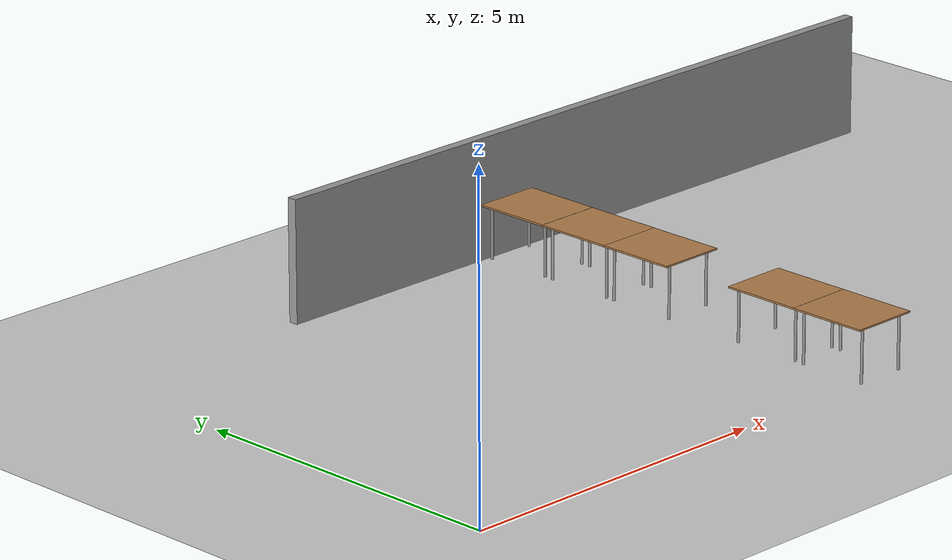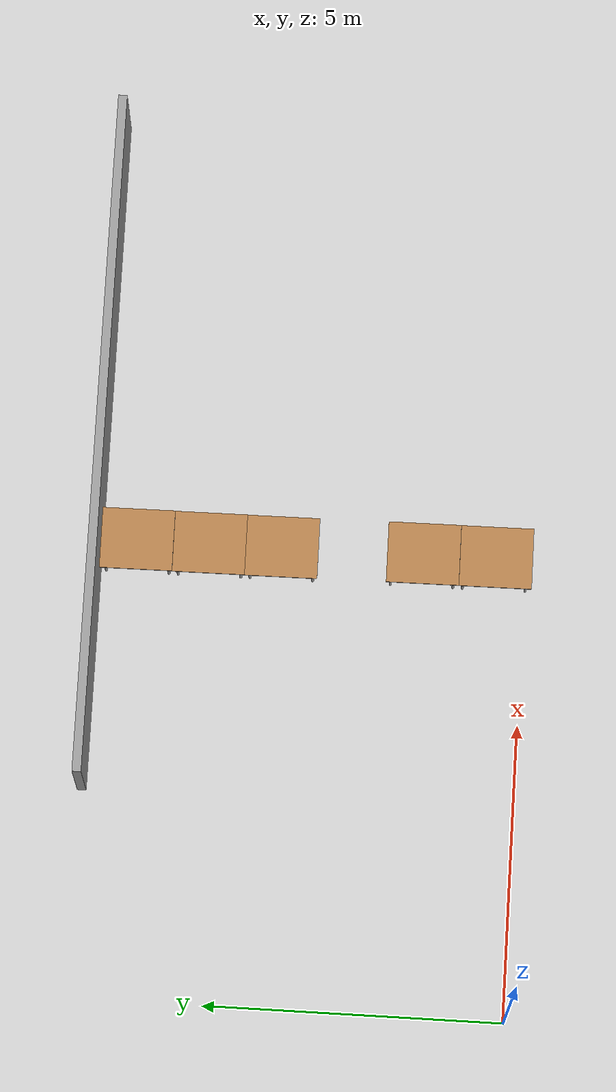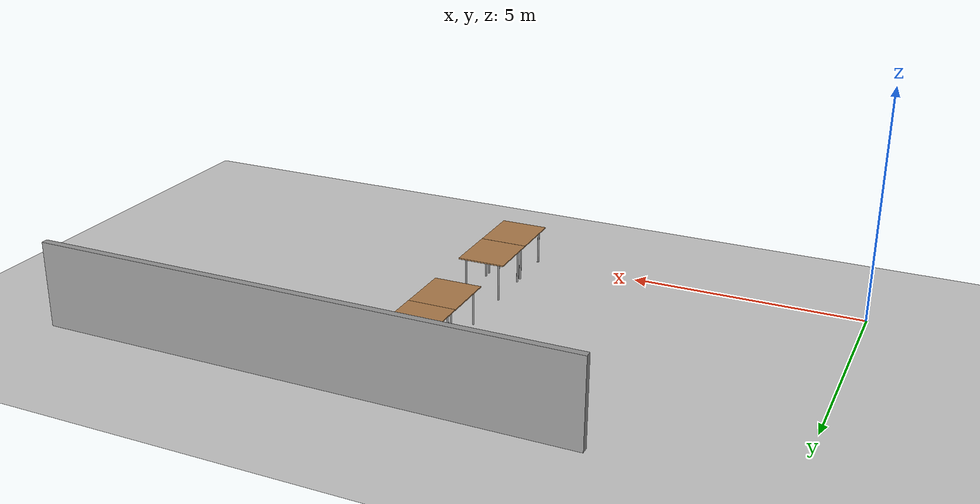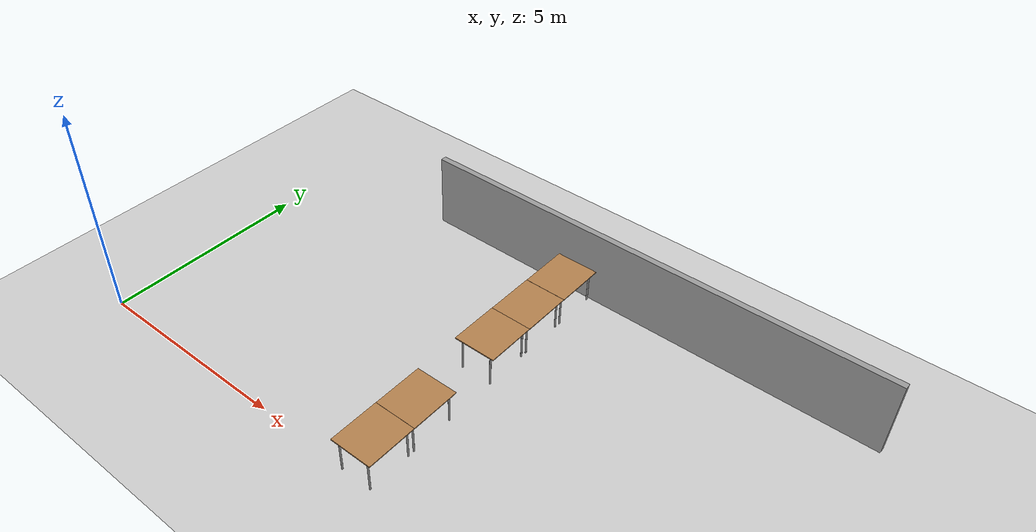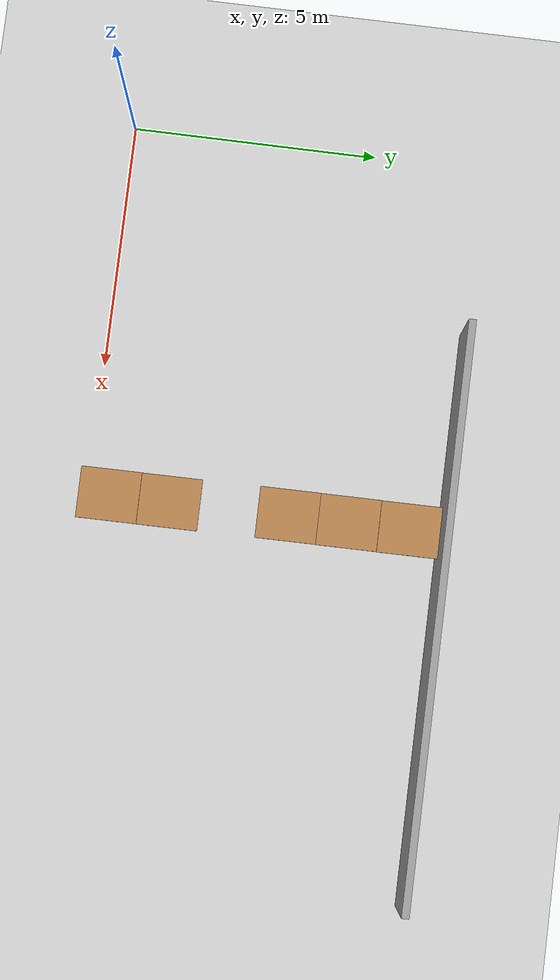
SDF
<sdf version="1.7">
 <world name="default">
  <model name="work_station_clone_clone_clone_clone_clone_clone_clone_clone_clone">
   <link name="link">
    <inertial>
     <inertia><ixx>0</ixx><ixy>0</ixy><ixz>0</ixz><iyy>0</iyy><iyz>0</iyz><izz>0</izz></inertia>
     <mass>0</mass>
    </inertial>
    <visual name="back_right_leg">
     <pose>-0.53 -0.38 0.42 0 -0 0</pose>
     <geometry><cylinder><radius>0.0207459</radius><length>0.822541</length></cylinder></geometry>
     <material>
      <script><uri>file://media/materials/scripts/gazebo.material</uri><name>Gazebo/Grey</name></script>
      <shader type="pixel"><normal_map>__default__</normal_map></shader>
      <ambient>0.3 0.3 0.3 1</ambient>
      <diffuse>0.7 0.7 0.7 1</diffuse>
      <specular>0.01 0.01 0.01 1</specular>
      <emissive>0 0 0 1</emissive>
     </material>
    </visual>
    <visual name="back_left_leg">
     <pose>-0.53 0.38 0.42 0 -0 0</pose>
     <geometry><cylinder><radius>0.0207459</radius><length>0.822541</length></cylinder></geometry>
     <material>
      <script><uri>file://media/materials/scripts/gazebo.material</uri><name>Gazebo/Grey</name></script>
      <shader type="pixel"><normal_map>__default__</normal_map></shader>
      <ambient>0.3 0.3 0.3 1</ambient>
      <diffuse>0.7 0.7 0.7 1</diffuse>
      <specular>0.01 0.01 0.01 1</specular>
      <emissive>0 0 0 1</emissive>
     </material>
    </visual>
    <visual name="front_left_leg">
     <pose>0.53 0.38 0.42 0 -0 0</pose>
     <geometry><cylinder><radius>0.0207459</radius><length>0.822541</length></cylinder></geometry>
     <material>
      <script><uri>file://media/materials/scripts/gazebo.material</uri><name>Gazebo/Grey</name></script>
      <shader type="pixel"><normal_map>__default__</normal_map></shader>
      <ambient>0.3 0.3 0.3 1</ambient>
      <diffuse>0.7 0.7 0.7 1</diffuse>
      <specular>0.01 0.01 0.01 1</specular>
      <emissive>0 0 0 1</emissive>
     </material>
    </visual>
    <visual name="visual1">
     <pose>0 0 0.84 0 -0 0</pose>
     <geometry><box><size>1.21551 1.02942 0.025485</size></box></geometry>
     <material>
      <script><uri>file://media/materials/scripts/gazebo.material</uri><name>Gazebo/Wood</name></script>
      <shader type="pixel"><normal_map>__default__</normal_map></shader>
      <ambient>1 1 1 1</ambient>
      <diffuse>1 1 1 1</diffuse>
      <specular>0.2 0.2 0.2 1</specular>
      <emissive>0 0 0 1</emissive>
     </material>
    </visual>
    <visual name="front_right_leg">
     <pose>0.53 -0.38 0.42 0 -0 0</pose>
     <geometry><cylinder><radius>0.0207459</radius><length>0.822541</length></cylinder></geometry>
     <material>
      <script><uri>file://media/materials/scripts/gazebo.material</uri><name>Gazebo/Grey</name></script>
      <shader type="pixel"><normal_map>__default__</normal_map></shader>
      <ambient>0.3 0.3 0.3 1</ambient>
      <diffuse>0.7 0.7 0.7 1</diffuse>
      <specular>0.01 0.01 0.01 1</specular>
      <emissive>0 0 0 1</emissive>
     </material>
    </visual>
    <collision name="surface">
     <pose>0 0 0.84 0 -0 0</pose>
     <geometry><box><size>1.21551 1.02942 0.025485</size></box></geometry>
     <surface>
      <friction>
       <ode><mu>0.6</mu><mu2>0.6</mu2><fdir1>0 0 0</fdir1><slip1>0</slip1><slip2>0</slip2></ode>
       <torsional>
        <coefficient>1</coefficient>
        <patch_radius>0</patch_radius>
        <surface_radius>0</surface_radius>
        <use_patch_radius>1</use_patch_radius>
        <ode><slip>0</slip></ode>
       </torsional>
      </friction>
      <bounce><restitution_coefficient>0</restitution_coefficient><threshold>1e+06</threshold></bounce>
      <contact>
       <collide_without_contact>0</collide_without_contact>
       <collide_without_contact_bitmask>1</collide_without_contact_bitmask>
       <collide_bitmask>1</collide_bitmask>
       <ode>
        <soft_cfm>0</soft_cfm>
        <soft_erp>0.2</soft_erp>
        <kp>1e+13</kp>
        <kd>1</kd>
        <max_vel>0.01</max_vel>
        <min_depth>0</min_depth>
       </ode>
       <bullet>
        <split_impulse>1</split_impulse>
        <split_impulse_penetration_threshold>-0.01</split_impulse_penetration_threshold>
        <soft_cfm>0</soft_cfm>
        <soft_erp>0.2</soft_erp>
        <kp>1e+13</kp>
        <kd>1</kd>
       </bullet>
      </contact>
     </surface>
    </collision>
    <collision name="front_left_leg">
     <pose>0.53 0.38 0.42 0 -0 0</pose>
     <geometry><cylinder><radius>0.020746</radius><length>0.822541</length></cylinder></geometry>
     <surface>
      <friction>
       <ode><mu>1</mu><mu2>1</mu2><fdir1>0 0 0</fdir1><slip1>0</slip1><slip2>0</slip2></ode>
       <torsional>
        <coefficient>1</coefficient>
        <patch_radius>0</patch_radius>
        <surface_radius>0</surface_radius>
        <use_patch_radius>1</use_patch_radius>
        <ode><slip>0</slip></ode>
       </torsional>
      </friction>
      <bounce><restitution_coefficient>0</restitution_coefficient><threshold>1e+06</threshold></bounce>
      <contact>
       <collide_without_contact>0</collide_without_contact>
       <collide_without_contact_bitmask>1</collide_without_contact_bitmask>
       <collide_bitmask>1</collide_bitmask>
       <ode>
        <soft_cfm>0</soft_cfm>
        <soft_erp>0.2</soft_erp>
        <kp>1e+13</kp>
        <kd>1</kd>
        <max_vel>0.01</max_vel>
        <min_depth>0</min_depth>
       </ode>
       <bullet>
        <split_impulse>1</split_impulse>
        <split_impulse_penetration_threshold>-0.01</split_impulse_penetration_threshold>
        <soft_cfm>0</soft_cfm>
        <soft_erp>0.2</soft_erp>
        <kp>1e+13</kp>
        <kd>1</kd>
       </bullet>
      </contact>
     </surface>
    </collision>
    <collision name="front_right_leg">
     <pose>0.53 -0.38 0.42 0 -0 0</pose>
     <geometry><cylinder><radius>0.020746</radius><length>0.822541</length></cylinder></geometry>
     <surface>
      <friction>
       <ode><mu>1</mu><mu2>1</mu2><fdir1>0 0 0</fdir1><slip1>0</slip1><slip2>0</slip2></ode>
       <torsional>
        <coefficient>1</coefficient>
        <patch_radius>0</patch_radius>
        <surface_radius>0</surface_radius>
        <use_patch_radius>1</use_patch_radius>
        <ode><slip>0</slip></ode>
       </torsional>
      </friction>
      <bounce><restitution_coefficient>0</restitution_coefficient><threshold>1e+06</threshold></bounce>
      <contact>
       <collide_without_contact>0</collide_without_contact>
       <collide_without_contact_bitmask>1</collide_without_contact_bitmask>
       <collide_bitmask>1</collide_bitmask>
       <ode>
        <soft_cfm>0</soft_cfm>
        <soft_erp>0.2</soft_erp>
        <kp>1e+13</kp>
        <kd>1</kd>
        <max_vel>0.01</max_vel>
        <min_depth>0</min_depth>
       </ode>
       <bullet>
        <split_impulse>1</split_impulse>
        <split_impulse_penetration_threshold>-0.01</split_impulse_penetration_threshold>
        <soft_cfm>0</soft_cfm>
        <soft_erp>0.2</soft_erp>
        <kp>1e+13</kp>
        <kd>1</kd>
       </bullet>
      </contact>
     </surface>
    </collision>
    <collision name="back_right_leg">
     <pose>-0.53 -0.38 0.42 0 -0 0</pose>
     <geometry><cylinder><radius>0.020746</radius><length>0.822541</length></cylinder></geometry>
     <surface>
      <friction>
       <ode><mu>1</mu><mu2>1</mu2><fdir1>0 0 0</fdir1><slip1>0</slip1><slip2>0</slip2></ode>
       <torsional>
        <coefficient>1</coefficient>
        <patch_radius>0</patch_radius>
        <surface_radius>0</surface_radius>
        <use_patch_radius>1</use_patch_radius>
        <ode><slip>0</slip></ode>
       </torsional>
      </friction>
      <bounce><restitution_coefficient>0</restitution_coefficient><threshold>1e+06</threshold></bounce>
      <contact>
       <collide_without_contact>0</collide_without_contact>
       <collide_without_contact_bitmask>1</collide_without_contact_bitmask>
       <collide_bitmask>1</collide_bitmask>
       <ode>
        <soft_cfm>0</soft_cfm>
        <soft_erp>0.2</soft_erp>
        <kp>1e+13</kp>
        <kd>1</kd>
        <max_vel>0.01</max_vel>
        <min_depth>0</min_depth>
       </ode>
       <bullet>
        <split_impulse>1</split_impulse>
        <split_impulse_penetration_threshold>-0.01</split_impulse_penetration_threshold>
        <soft_cfm>0</soft_cfm>
        <soft_erp>0.2</soft_erp>
        <kp>1e+13</kp>
        <kd>1</kd>
       </bullet>
      </contact>
     </surface>
    </collision>
    <collision name="back_left_leg">
     <pose>-0.53 0.38 0.42 0 -0 0</pose>
     <geometry><cylinder><radius>0.020746</radius><length>0.822541</length></cylinder></geometry>
     <surface>
      <friction>
       <ode><mu>1</mu><mu2>1</mu2><fdir1>0 0 0</fdir1><slip1>0</slip1><slip2>0</slip2></ode>
       <torsional>
        <coefficient>1</coefficient>
        <patch_radius>0</patch_radius>
        <surface_radius>0</surface_radius>
        <use_patch_radius>1</use_patch_radius>
        <ode><slip>0</slip></ode>
       </torsional>
      </friction>
      <bounce><restitution_coefficient>0</restitution_coefficient><threshold>1e+06</threshold></bounce>
      <contact>
       <collide_without_contact>0</collide_without_contact>
       <collide_without_contact_bitmask>1</collide_without_contact_bitmask>
       <collide_bitmask>1</collide_bitmask>
       <ode>
        <soft_cfm>0</soft_cfm>
        <soft_erp>0.2</soft_erp>
        <kp>1e+13</kp>
        <kd>1</kd>
        <max_vel>0.01</max_vel>
        <min_depth>0</min_depth>
       </ode>
       <bullet>
        <split_impulse>1</split_impulse>
        <split_impulse_penetration_threshold>-0.01</split_impulse_penetration_threshold>
        <soft_cfm>0</soft_cfm>
        <soft_erp>0.2</soft_erp>
        <kp>1e+13</kp>
        <kd>1</kd>
       </bullet>
      </contact>
     </surface>
    </collision>
   </link>
   <static>1</static>
   <pose>7.69465 1.73524 -0.010044 0 0 -1.56528</pose>
  </model>
  <model name="work_station_clone_clone_clone_clone_clone_clone_clone_clone_clone_clone">
   <link name="link">
    <inertial>
     <inertia><ixx>0</ixx><ixy>0</ixy><ixz>0</ixz><iyy>0</iyy><iyz>0</iyz><izz>0</izz></inertia>
     <mass>0</mass>
    </inertial>
    <visual name="back_right_leg">
     <pose>-0.53 -0.38 0.42 0 -0 0</pose>
     <geometry><cylinder><radius>0.0207459</radius><length>0.822541</length></cylinder></geometry>
     <material>
      <script><uri>file://media/materials/scripts/gazebo.material</uri><name>Gazebo/Grey</name></script>
      <shader type="pixel"><normal_map>__default__</normal_map></shader>
      <ambient>0.3 0.3 0.3 1</ambient>
      <diffuse>0.7 0.7 0.7 1</diffuse>
      <specular>0.01 0.01 0.01 1</specular>
      <emissive>0 0 0 1</emissive>
     </material>
    </visual>
    <visual name="back_left_leg">
     <pose>-0.53 0.38 0.42 0 -0 0</pose>
     <geometry><cylinder><radius>0.0207459</radius><length>0.822541</length></cylinder></geometry>
     <material>
      <script><uri>file://media/materials/scripts/gazebo.material</uri><name>Gazebo/Grey</name></script>
      <shader type="pixel"><normal_map>__default__</normal_map></shader>
      <ambient>0.3 0.3 0.3 1</ambient>
      <diffuse>0.7 0.7 0.7 1</diffuse>
      <specular>0.01 0.01 0.01 1</specular>
      <emissive>0 0 0 1</emissive>
     </material>
    </visual>
    <visual name="front_left_leg">
     <pose>0.53 0.38 0.42 0 -0 0</pose>
     <geometry><cylinder><radius>0.0207459</radius><length>0.822541</length></cylinder></geometry>
     <material>
      <script><uri>file://media/materials/scripts/gazebo.material</uri><name>Gazebo/Grey</name></script>
      <shader type="pixel"><normal_map>__default__</normal_map></shader>
      <ambient>0.3 0.3 0.3 1</ambient>
      <diffuse>0.7 0.7 0.7 1</diffuse>
      <specular>0.01 0.01 0.01 1</specular>
      <emissive>0 0 0 1</emissive>
     </material>
    </visual>
    <visual name="visual1">
     <pose>0 0 0.84 0 -0 0</pose>
     <geometry><box><size>1.21551 1.02942 0.025485</size></box></geometry>
     <material>
      <script><uri>file://media/materials/scripts/gazebo.material</uri><name>Gazebo/Wood</name></script>
      <shader type="pixel"><normal_map>__default__</normal_map></shader>
      <ambient>1 1 1 1</ambient>
      <diffuse>1 1 1 1</diffuse>
      <specular>0.2 0.2 0.2 1</specular>
      <emissive>0 0 0 1</emissive>
     </material>
    </visual>
    <visual name="front_right_leg">
     <pose>0.53 -0.38 0.42 0 -0 0</pose>
     <geometry><cylinder><radius>0.0207459</radius><length>0.822541</length></cylinder></geometry>
     <material>
      <script><uri>file://media/materials/scripts/gazebo.material</uri><name>Gazebo/Grey</name></script>
      <shader type="pixel"><normal_map>__default__</normal_map></shader>
      <ambient>0.3 0.3 0.3 1</ambient>
      <diffuse>0.7 0.7 0.7 1</diffuse>
      <specular>0.01 0.01 0.01 1</specular>
      <emissive>0 0 0 1</emissive>
     </material>
    </visual>
    <collision name="surface">
     <pose>0 0 0.84 0 -0 0</pose>
     <geometry><box><size>1.21551 1.02942 0.025485</size></box></geometry>
     <surface>
      <friction>
       <ode><mu>0.6</mu><mu2>0.6</mu2><fdir1>0 0 0</fdir1><slip1>0</slip1><slip2>0</slip2></ode>
       <torsional>
        <coefficient>1</coefficient>
        <patch_radius>0</patch_radius>
        <surface_radius>0</surface_radius>
        <use_patch_radius>1</use_patch_radius>
        <ode><slip>0</slip></ode>
       </torsional>
      </friction>
      <bounce><restitution_coefficient>0</restitution_coefficient><threshold>1e+06</threshold></bounce>
      <contact>
       <collide_without_contact>0</collide_without_contact>
       <collide_without_contact_bitmask>1</collide_without_contact_bitmask>
       <collide_bitmask>1</collide_bitmask>
       <ode>
        <soft_cfm>0</soft_cfm>
        <soft_erp>0.2</soft_erp>
        <kp>1e+13</kp>
        <kd>1</kd>
        <max_vel>0.01</max_vel>
        <min_depth>0</min_depth>
       </ode>
       <bullet>
        <split_impulse>1</split_impulse>
        <split_impulse_penetration_threshold>-0.01</split_impulse_penetration_threshold>
        <soft_cfm>0</soft_cfm>
        <soft_erp>0.2</soft_erp>
        <kp>1e+13</kp>
        <kd>1</kd>
       </bullet>
      </contact>
     </surface>
    </collision>
    <collision name="front_left_leg">
     <pose>0.53 0.38 0.42 0 -0 0</pose>
     <geometry><cylinder><radius>0.020746</radius><length>0.822541</length></cylinder></geometry>
     <surface>
      <friction>
       <ode><mu>1</mu><mu2>1</mu2><fdir1>0 0 0</fdir1><slip1>0</slip1><slip2>0</slip2></ode>
       <torsional>
        <coefficient>1</coefficient>
        <patch_radius>0</patch_radius>
        <surface_radius>0</surface_radius>
        <use_patch_radius>1</use_patch_radius>
        <ode><slip>0</slip></ode>
       </torsional>
      </friction>
      <bounce><restitution_coefficient>0</restitution_coefficient><threshold>1e+06</threshold></bounce>
      <contact>
       <collide_without_contact>0</collide_without_contact>
       <collide_without_contact_bitmask>1</collide_without_contact_bitmask>
       <collide_bitmask>1</collide_bitmask>
       <ode>
        <soft_cfm>0</soft_cfm>
        <soft_erp>0.2</soft_erp>
        <kp>1e+13</kp>
        <kd>1</kd>
        <max_vel>0.01</max_vel>
        <min_depth>0</min_depth>
       </ode>
       <bullet>
        <split_impulse>1</split_impulse>
        <split_impulse_penetration_threshold>-0.01</split_impulse_penetration_threshold>
        <soft_cfm>0</soft_cfm>
        <soft_erp>0.2</soft_erp>
        <kp>1e+13</kp>
        <kd>1</kd>
       </bullet>
      </contact>
     </surface>
    </collision>
    <collision name="front_right_leg">
     <pose>0.53 -0.38 0.42 0 -0 0</pose>
     <geometry><cylinder><radius>0.020746</radius><length>0.822541</length></cylinder></geometry>
     <surface>
      <friction>
       <ode><mu>1</mu><mu2>1</mu2><fdir1>0 0 0</fdir1><slip1>0</slip1><slip2>0</slip2></ode>
       <torsional>
        <coefficient>1</coefficient>
        <patch_radius>0</patch_radius>
        <surface_radius>0</surface_radius>
        <use_patch_radius>1</use_patch_radius>
        <ode><slip>0</slip></ode>
       </torsional>
      </friction>
      <bounce><restitution_coefficient>0</restitution_coefficient><threshold>1e+06</threshold></bounce>
      <contact>
       <collide_without_contact>0</collide_without_contact>
       <collide_without_contact_bitmask>1</collide_without_contact_bitmask>
       <collide_bitmask>1</collide_bitmask>
       <ode>
        <soft_cfm>0</soft_cfm>
        <soft_erp>0.2</soft_erp>
        <kp>1e+13</kp>
        <kd>1</kd>
        <max_vel>0.01</max_vel>
        <min_depth>0</min_depth>
       </ode>
       <bullet>
        <split_impulse>1</split_impulse>
        <split_impulse_penetration_threshold>-0.01</split_impulse_penetration_threshold>
        <soft_cfm>0</soft_cfm>
        <soft_erp>0.2</soft_erp>
        <kp>1e+13</kp>
        <kd>1</kd>
       </bullet>
      </contact>
     </surface>
    </collision>
    <collision name="back_right_leg">
     <pose>-0.53 -0.38 0.42 0 -0 0</pose>
     <geometry><cylinder><radius>0.020746</radius><length>0.822541</length></cylinder></geometry>
     <surface>
      <friction>
       <ode><mu>1</mu><mu2>1</mu2><fdir1>0 0 0</fdir1><slip1>0</slip1><slip2>0</slip2></ode>
       <torsional>
        <coefficient>1</coefficient>
        <patch_radius>0</patch_radius>
        <surface_radius>0</surface_radius>
        <use_patch_radius>1</use_patch_radius>
        <ode><slip>0</slip></ode>
       </torsional>
      </friction>
      <bounce><restitution_coefficient>0</restitution_coefficient><threshold>1e+06</threshold></bounce>
      <contact>
       <collide_without_contact>0</collide_without_contact>
       <collide_without_contact_bitmask>1</collide_without_contact_bitmask>
       <collide_bitmask>1</collide_bitmask>
       <ode>
        <soft_cfm>0</soft_cfm>
        <soft_erp>0.2</soft_erp>
        <kp>1e+13</kp>
        <kd>1</kd>
        <max_vel>0.01</max_vel>
        <min_depth>0</min_depth>
       </ode>
       <bullet>
        <split_impulse>1</split_impulse>
        <split_impulse_penetration_threshold>-0.01</split_impulse_penetration_threshold>
        <soft_cfm>0</soft_cfm>
        <soft_erp>0.2</soft_erp>
        <kp>1e+13</kp>
        <kd>1</kd>
       </bullet>
      </contact>
     </surface>
    </collision>
    <collision name="back_left_leg">
     <pose>-0.53 0.38 0.42 0 -0 0</pose>
     <geometry><cylinder><radius>0.020746</radius><length>0.822541</length></cylinder></geometry>
     <surface>
      <friction>
       <ode><mu>1</mu><mu2>1</mu2><fdir1>0 0 0</fdir1><slip1>0</slip1><slip2>0</slip2></ode>
       <torsional>
        <coefficient>1</coefficient>
        <patch_radius>0</patch_radius>
        <surface_radius>0</surface_radius>
        <use_patch_radius>1</use_patch_radius>
        <ode><slip>0</slip></ode>
       </torsional>
      </friction>
      <bounce><restitution_coefficient>0</restitution_coefficient><threshold>1e+06</threshold></bounce>
      <contact>
       <collide_without_contact>0</collide_without_contact>
       <collide_without_contact_bitmask>1</collide_without_contact_bitmask>
       <collide_bitmask>1</collide_bitmask>
       <ode>
        <soft_cfm>0</soft_cfm>
        <soft_erp>0.2</soft_erp>
        <kp>1e+13</kp>
        <kd>1</kd>
        <max_vel>0.01</max_vel>
        <min_depth>0</min_depth>
       </ode>
       <bullet>
        <split_impulse>1</split_impulse>
        <split_impulse_penetration_threshold>-0.01</split_impulse_penetration_threshold>
        <soft_cfm>0</soft_cfm>
        <soft_erp>0.2</soft_erp>
        <kp>1e+13</kp>
        <kd>1</kd>
       </bullet>
      </contact>
     </surface>
    </collision>
   </link>
   <static>1</static>
   <pose>7.69917 0.518408 -0.010044 0 0 -1.56528</pose>
  </model>
  <model name="work_station_clone_clone_clone_clone_clone_clone_clone_clone_clone_clone_0">
   <link name="link">
    <inertial>
     <inertia><ixx>0</ixx><ixy>0</ixy><ixz>0</ixz><iyy>0</iyy><iyz>0</iyz><izz>0</izz></inertia>
     <mass>0</mass>
    </inertial>
    <visual name="back_right_leg">
     <pose>-0.53 -0.38 0.42 0 -0 0</pose>
     <geometry><cylinder><radius>0.0207459</radius><length>0.822541</length></cylinder></geometry>
     <material>
      <script><uri>file://media/materials/scripts/gazebo.material</uri><name>Gazebo/Grey</name></script>
      <shader type="pixel"><normal_map>__default__</normal_map></shader>
      <ambient>0.3 0.3 0.3 1</ambient>
      <diffuse>0.7 0.7 0.7 1</diffuse>
      <specular>0.01 0.01 0.01 1</specular>
      <emissive>0 0 0 1</emissive>
     </material>
    </visual>
    <visual name="back_left_leg">
     <pose>-0.53 0.38 0.42 0 -0 0</pose>
     <geometry><cylinder><radius>0.0207459</radius><length>0.822541</length></cylinder></geometry>
     <material>
      <script><uri>file://media/materials/scripts/gazebo.material</uri><name>Gazebo/Grey</name></script>
      <shader type="pixel"><normal_map>__default__</normal_map></shader>
      <ambient>0.3 0.3 0.3 1</ambient>
      <diffuse>0.7 0.7 0.7 1</diffuse>
      <specular>0.01 0.01 0.01 1</specular>
      <emissive>0 0 0 1</emissive>
     </material>
    </visual>
    <visual name="front_left_leg">
     <pose>0.53 0.38 0.42 0 -0 0</pose>
     <geometry><cylinder><radius>0.0207459</radius><length>0.822541</length></cylinder></geometry>
     <material>
      <script><uri>file://media/materials/scripts/gazebo.material</uri><name>Gazebo/Grey</name></script>
      <shader type="pixel"><normal_map>__default__</normal_map></shader>
      <ambient>0.3 0.3 0.3 1</ambient>
      <diffuse>0.7 0.7 0.7 1</diffuse>
      <specular>0.01 0.01 0.01 1</specular>
      <emissive>0 0 0 1</emissive>
     </material>
    </visual>
    <visual name="visual1">
     <pose>0 0 0.84 0 -0 0</pose>
     <geometry><box><size>1.21551 1.02942 0.025485</size></box></geometry>
     <material>
      <script><uri>file://media/materials/scripts/gazebo.material</uri><name>Gazebo/Wood</name></script>
      <shader type="pixel"><normal_map>__default__</normal_map></shader>
      <ambient>1 1 1 1</ambient>
      <diffuse>1 1 1 1</diffuse>
      <specular>0.2 0.2 0.2 1</specular>
      <emissive>0 0 0 1</emissive>
     </material>
    </visual>
    <visual name="front_right_leg">
     <pose>0.53 -0.38 0.42 0 -0 0</pose>
     <geometry><cylinder><radius>0.0207459</radius><length>0.822541</length></cylinder></geometry>
     <material>
      <script><uri>file://media/materials/scripts/gazebo.material</uri><name>Gazebo/Grey</name></script>
      <shader type="pixel"><normal_map>__default__</normal_map></shader>
      <ambient>0.3 0.3 0.3 1</ambient>
      <diffuse>0.7 0.7 0.7 1</diffuse>
      <specular>0.01 0.01 0.01 1</specular>
      <emissive>0 0 0 1</emissive>
     </material>
    </visual>
    <collision name="surface">
     <pose>0 0 0.84 0 -0 0</pose>
     <geometry><box><size>1.21551 1.02942 0.025485</size></box></geometry>
     <surface>
      <friction>
       <ode><mu>0.6</mu><mu2>0.6</mu2><fdir1>0 0 0</fdir1><slip1>0</slip1><slip2>0</slip2></ode>
       <torsional>
        <coefficient>1</coefficient>
        <patch_radius>0</patch_radius>
        <surface_radius>0</surface_radius>
        <use_patch_radius>1</use_patch_radius>
        <ode><slip>0</slip></ode>
       </torsional>
      </friction>
      <bounce><restitution_coefficient>0</restitution_coefficient><threshold>1e+06</threshold></bounce>
      <contact>
       <collide_without_contact>0</collide_without_contact>
       <collide_without_contact_bitmask>1</collide_without_contact_bitmask>
       <collide_bitmask>1</collide_bitmask>
       <ode>
        <soft_cfm>0</soft_cfm>
        <soft_erp>0.2</soft_erp>
        <kp>1e+13</kp>
        <kd>1</kd>
        <max_vel>0.01</max_vel>
        <min_depth>0</min_depth>
       </ode>
       <bullet>
        <split_impulse>1</split_impulse>
        <split_impulse_penetration_threshold>-0.01</split_impulse_penetration_threshold>
        <soft_cfm>0</soft_cfm>
        <soft_erp>0.2</soft_erp>
        <kp>1e+13</kp>
        <kd>1</kd>
       </bullet>
      </contact>
     </surface>
    </collision>
    <collision name="front_left_leg">
     <pose>0.53 0.38 0.42 0 -0 0</pose>
     <geometry><cylinder><radius>0.020746</radius><length>0.822541</length></cylinder></geometry>
     <surface>
      <friction>
       <ode><mu>1</mu><mu2>1</mu2><fdir1>0 0 0</fdir1><slip1>0</slip1><slip2>0</slip2></ode>
       <torsional>
        <coefficient>1</coefficient>
        <patch_radius>0</patch_radius>
        <surface_radius>0</surface_radius>
        <use_patch_radius>1</use_patch_radius>
        <ode><slip>0</slip></ode>
       </torsional>
      </friction>
      <bounce><restitution_coefficient>0</restitution_coefficient><threshold>1e+06</threshold></bounce>
      <contact>
       <collide_without_contact>0</collide_without_contact>
       <collide_without_contact_bitmask>1</collide_without_contact_bitmask>
       <collide_bitmask>1</collide_bitmask>
       <ode>
        <soft_cfm>0</soft_cfm>
        <soft_erp>0.2</soft_erp>
        <kp>1e+13</kp>
        <kd>1</kd>
        <max_vel>0.01</max_vel>
        <min_depth>0</min_depth>
       </ode>
       <bullet>
        <split_impulse>1</split_impulse>
        <split_impulse_penetration_threshold>-0.01</split_impulse_penetration_threshold>
        <soft_cfm>0</soft_cfm>
        <soft_erp>0.2</soft_erp>
        <kp>1e+13</kp>
        <kd>1</kd>
       </bullet>
      </contact>
     </surface>
    </collision>
    <collision name="front_right_leg">
     <pose>0.53 -0.38 0.42 0 -0 0</pose>
     <geometry><cylinder><radius>0.020746</radius><length>0.822541</length></cylinder></geometry>
     <surface>
      <friction>
       <ode><mu>1</mu><mu2>1</mu2><fdir1>0 0 0</fdir1><slip1>0</slip1><slip2>0</slip2></ode>
       <torsional>
        <coefficient>1</coefficient>
        <patch_radius>0</patch_radius>
        <surface_radius>0</surface_radius>
        <use_patch_radius>1</use_patch_radius>
        <ode><slip>0</slip></ode>
       </torsional>
      </friction>
      <bounce><restitution_coefficient>0</restitution_coefficient><threshold>1e+06</threshold></bounce>
      <contact>
       <collide_without_contact>0</collide_without_contact>
       <collide_without_contact_bitmask>1</collide_without_contact_bitmask>
       <collide_bitmask>1</collide_bitmask>
       <ode>
        <soft_cfm>0</soft_cfm>
        <soft_erp>0.2</soft_erp>
        <kp>1e+13</kp>
        <kd>1</kd>
        <max_vel>0.01</max_vel>
        <min_depth>0</min_depth>
       </ode>
       <bullet>
        <split_impulse>1</split_impulse>
        <split_impulse_penetration_threshold>-0.01</split_impulse_penetration_threshold>
        <soft_cfm>0</soft_cfm>
        <soft_erp>0.2</soft_erp>
        <kp>1e+13</kp>
        <kd>1</kd>
       </bullet>
      </contact>
     </surface>
    </collision>
    <collision name="back_right_leg">
     <pose>-0.53 -0.38 0.42 0 -0 0</pose>
     <geometry><cylinder><radius>0.020746</radius><length>0.822541</length></cylinder></geometry>
     <surface>
      <friction>
       <ode><mu>1</mu><mu2>1</mu2><fdir1>0 0 0</fdir1><slip1>0</slip1><slip2>0</slip2></ode>
       <torsional>
        <coefficient>1</coefficient>
        <patch_radius>0</patch_radius>
        <surface_radius>0</surface_radius>
        <use_patch_radius>1</use_patch_radius>
        <ode><slip>0</slip></ode>
       </torsional>
      </friction>
      <bounce><restitution_coefficient>0</restitution_coefficient><threshold>1e+06</threshold></bounce>
      <contact>
       <collide_without_contact>0</collide_without_contact>
       <collide_without_contact_bitmask>1</collide_without_contact_bitmask>
       <collide_bitmask>1</collide_bitmask>
       <ode>
        <soft_cfm>0</soft_cfm>
        <soft_erp>0.2</soft_erp>
        <kp>1e+13</kp>
        <kd>1</kd>
        <max_vel>0.01</max_vel>
        <min_depth>0</min_depth>
       </ode>
       <bullet>
        <split_impulse>1</split_impulse>
        <split_impulse_penetration_threshold>-0.01</split_impulse_penetration_threshold>
        <soft_cfm>0</soft_cfm>
        <soft_erp>0.2</soft_erp>
        <kp>1e+13</kp>
        <kd>1</kd>
       </bullet>
      </contact>
     </surface>
    </collision>
    <collision name="back_left_leg">
     <pose>-0.53 0.38 0.42 0 -0 0</pose>
     <geometry><cylinder><radius>0.020746</radius><length>0.822541</length></cylinder></geometry>
     <surface>
      <friction>
       <ode><mu>1</mu><mu2>1</mu2><fdir1>0 0 0</fdir1><slip1>0</slip1><slip2>0</slip2></ode>
       <torsional>
        <coefficient>1</coefficient>
        <patch_radius>0</patch_radius>
        <surface_radius>0</surface_radius>
        <use_patch_radius>1</use_patch_radius>
        <ode><slip>0</slip></ode>
       </torsional>
      </friction>
      <bounce><restitution_coefficient>0</restitution_coefficient><threshold>1e+06</threshold></bounce>
      <contact>
       <collide_without_contact>0</collide_without_contact>
       <collide_without_contact_bitmask>1</collide_without_contact_bitmask>
       <collide_bitmask>1</collide_bitmask>
       <ode>
        <soft_cfm>0</soft_cfm>
        <soft_erp>0.2</soft_erp>
        <kp>1e+13</kp>
        <kd>1</kd>
        <max_vel>0.01</max_vel>
        <min_depth>0</min_depth>
       </ode>
       <bullet>
        <split_impulse>1</split_impulse>
        <split_impulse_penetration_threshold>-0.01</split_impulse_penetration_threshold>
        <soft_cfm>0</soft_cfm>
        <soft_erp>0.2</soft_erp>
        <kp>1e+13</kp>
        <kd>1</kd>
       </bullet>
      </contact>
     </surface>
    </collision>
   </link>
   <static>1</static>
   <pose>7.66653 6.5373 -0.010044 0 0 -1.56528</pose>
  </model>
  <model name="work_station_clone_clone_clone_clone_clone_clone_clone_clone_clone_clone_0_clone">
   <link name="link">
    <inertial>
     <inertia><ixx>0</ixx><ixy>0</ixy><ixz>0</ixz><iyy>0</iyy><iyz>0</iyz><izz>0</izz></inertia>
     <mass>0</mass>
    </inertial>
    <visual name="back_right_leg">
     <pose>-0.53 -0.38 0.42 0 -0 0</pose>
     <geometry><cylinder><radius>0.0207459</radius><length>0.822541</length></cylinder></geometry>
     <material>
      <script><uri>file://media/materials/scripts/gazebo.material</uri><name>Gazebo/Grey</name></script>
      <shader type="pixel"><normal_map>__default__</normal_map></shader>
      <ambient>0.3 0.3 0.3 1</ambient>
      <diffuse>0.7 0.7 0.7 1</diffuse>
      <specular>0.01 0.01 0.01 1</specular>
      <emissive>0 0 0 1</emissive>
     </material>
    </visual>
    <visual name="back_left_leg">
     <pose>-0.53 0.38 0.42 0 -0 0</pose>
     <geometry><cylinder><radius>0.0207459</radius><length>0.822541</length></cylinder></geometry>
     <material>
      <script><uri>file://media/materials/scripts/gazebo.material</uri><name>Gazebo/Grey</name></script>
      <shader type="pixel"><normal_map>__default__</normal_map></shader>
      <ambient>0.3 0.3 0.3 1</ambient>
      <diffuse>0.7 0.7 0.7 1</diffuse>
      <specular>0.01 0.01 0.01 1</specular>
      <emissive>0 0 0 1</emissive>
     </material>
    </visual>
    <visual name="front_left_leg">
     <pose>0.53 0.38 0.42 0 -0 0</pose>
     <geometry><cylinder><radius>0.0207459</radius><length>0.822541</length></cylinder></geometry>
     <material>
      <script><uri>file://media/materials/scripts/gazebo.material</uri><name>Gazebo/Grey</name></script>
      <shader type="pixel"><normal_map>__default__</normal_map></shader>
      <ambient>0.3 0.3 0.3 1</ambient>
      <diffuse>0.7 0.7 0.7 1</diffuse>
      <specular>0.01 0.01 0.01 1</specular>
      <emissive>0 0 0 1</emissive>
     </material>
    </visual>
    <visual name="visual1">
     <pose>0 0 0.84 0 -0 0</pose>
     <geometry><box><size>1.21551 1.02942 0.025485</size></box></geometry>
     <material>
      <script><uri>file://media/materials/scripts/gazebo.material</uri><name>Gazebo/Wood</name></script>
      <shader type="pixel"><normal_map>__default__</normal_map></shader>
      <ambient>1 1 1 1</ambient>
      <diffuse>1 1 1 1</diffuse>
      <specular>0.2 0.2 0.2 1</specular>
      <emissive>0 0 0 1</emissive>
     </material>
    </visual>
    <visual name="front_right_leg">
     <pose>0.53 -0.38 0.42 0 -0 0</pose>
     <geometry><cylinder><radius>0.0207459</radius><length>0.822541</length></cylinder></geometry>
     <material>
      <script><uri>file://media/materials/scripts/gazebo.material</uri><name>Gazebo/Grey</name></script>
      <shader type="pixel"><normal_map>__default__</normal_map></shader>
      <ambient>0.3 0.3 0.3 1</ambient>
      <diffuse>0.7 0.7 0.7 1</diffuse>
      <specular>0.01 0.01 0.01 1</specular>
      <emissive>0 0 0 1</emissive>
     </material>
    </visual>
    <collision name="surface">
     <pose>0 0 0.84 0 -0 0</pose>
     <geometry><box><size>1.21551 1.02942 0.025485</size></box></geometry>
     <surface>
      <friction>
       <ode><mu>0.6</mu><mu2>0.6</mu2><fdir1>0 0 0</fdir1><slip1>0</slip1><slip2>0</slip2></ode>
       <torsional>
        <coefficient>1</coefficient>
        <patch_radius>0</patch_radius>
        <surface_radius>0</surface_radius>
        <use_patch_radius>1</use_patch_radius>
        <ode><slip>0</slip></ode>
       </torsional>
      </friction>
      <bounce><restitution_coefficient>0</restitution_coefficient><threshold>1e+06</threshold></bounce>
      <contact>
       <collide_without_contact>0</collide_without_contact>
       <collide_without_contact_bitmask>1</collide_without_contact_bitmask>
       <collide_bitmask>1</collide_bitmask>
       <ode>
        <soft_cfm>0</soft_cfm>
        <soft_erp>0.2</soft_erp>
        <kp>1e+13</kp>
        <kd>1</kd>
        <max_vel>0.01</max_vel>
        <min_depth>0</min_depth>
       </ode>
       <bullet>
        <split_impulse>1</split_impulse>
        <split_impulse_penetration_threshold>-0.01</split_impulse_penetration_threshold>
        <soft_cfm>0</soft_cfm>
        <soft_erp>0.2</soft_erp>
        <kp>1e+13</kp>
        <kd>1</kd>
       </bullet>
      </contact>
     </surface>
    </collision>
    <collision name="front_left_leg">
     <pose>0.53 0.38 0.42 0 -0 0</pose>
     <geometry><cylinder><radius>0.020746</radius><length>0.822541</length></cylinder></geometry>
     <surface>
      <friction>
       <ode><mu>1</mu><mu2>1</mu2><fdir1>0 0 0</fdir1><slip1>0</slip1><slip2>0</slip2></ode>
       <torsional>
        <coefficient>1</coefficient>
        <patch_radius>0</patch_radius>
        <surface_radius>0</surface_radius>
        <use_patch_radius>1</use_patch_radius>
        <ode><slip>0</slip></ode>
       </torsional>
      </friction>
      <bounce><restitution_coefficient>0</restitution_coefficient><threshold>1e+06</threshold></bounce>
      <contact>
       <collide_without_contact>0</collide_without_contact>
       <collide_without_contact_bitmask>1</collide_without_contact_bitmask>
       <collide_bitmask>1</collide_bitmask>
       <ode>
        <soft_cfm>0</soft_cfm>
        <soft_erp>0.2</soft_erp>
        <kp>1e+13</kp>
        <kd>1</kd>
        <max_vel>0.01</max_vel>
        <min_depth>0</min_depth>
       </ode>
       <bullet>
        <split_impulse>1</split_impulse>
        <split_impulse_penetration_threshold>-0.01</split_impulse_penetration_threshold>
        <soft_cfm>0</soft_cfm>
        <soft_erp>0.2</soft_erp>
        <kp>1e+13</kp>
        <kd>1</kd>
       </bullet>
      </contact>
     </surface>
    </collision>
    <collision name="front_right_leg">
     <pose>0.53 -0.38 0.42 0 -0 0</pose>
     <geometry><cylinder><radius>0.020746</radius><length>0.822541</length></cylinder></geometry>
     <surface>
      <friction>
       <ode><mu>1</mu><mu2>1</mu2><fdir1>0 0 0</fdir1><slip1>0</slip1><slip2>0</slip2></ode>
       <torsional>
        <coefficient>1</coefficient>
        <patch_radius>0</patch_radius>
        <surface_radius>0</surface_radius>
        <use_patch_radius>1</use_patch_radius>
        <ode><slip>0</slip></ode>
       </torsional>
      </friction>
      <bounce><restitution_coefficient>0</restitution_coefficient><threshold>1e+06</threshold></bounce>
      <contact>
       <collide_without_contact>0</collide_without_contact>
       <collide_without_contact_bitmask>1</collide_without_contact_bitmask>
       <collide_bitmask>1</collide_bitmask>
       <ode>
        <soft_cfm>0</soft_cfm>
        <soft_erp>0.2</soft_erp>
        <kp>1e+13</kp>
        <kd>1</kd>
        <max_vel>0.01</max_vel>
        <min_depth>0</min_depth>
       </ode>
       <bullet>
        <split_impulse>1</split_impulse>
        <split_impulse_penetration_threshold>-0.01</split_impulse_penetration_threshold>
        <soft_cfm>0</soft_cfm>
        <soft_erp>0.2</soft_erp>
        <kp>1e+13</kp>
        <kd>1</kd>
       </bullet>
      </contact>
     </surface>
    </collision>
    <collision name="back_right_leg">
     <pose>-0.53 -0.38 0.42 0 -0 0</pose>
     <geometry><cylinder><radius>0.020746</radius><length>0.822541</length></cylinder></geometry>
     <surface>
      <friction>
       <ode><mu>1</mu><mu2>1</mu2><fdir1>0 0 0</fdir1><slip1>0</slip1><slip2>0</slip2></ode>
       <torsional>
        <coefficient>1</coefficient>
        <patch_radius>0</patch_radius>
        <surface_radius>0</surface_radius>
        <use_patch_radius>1</use_patch_radius>
        <ode><slip>0</slip></ode>
       </torsional>
      </friction>
      <bounce><restitution_coefficient>0</restitution_coefficient><threshold>1e+06</threshold></bounce>
      <contact>
       <collide_without_contact>0</collide_without_contact>
       <collide_without_contact_bitmask>1</collide_without_contact_bitmask>
       <collide_bitmask>1</collide_bitmask>
       <ode>
        <soft_cfm>0</soft_cfm>
        <soft_erp>0.2</soft_erp>
        <kp>1e+13</kp>
        <kd>1</kd>
        <max_vel>0.01</max_vel>
        <min_depth>0</min_depth>
       </ode>
       <bullet>
        <split_impulse>1</split_impulse>
        <split_impulse_penetration_threshold>-0.01</split_impulse_penetration_threshold>
        <soft_cfm>0</soft_cfm>
        <soft_erp>0.2</soft_erp>
        <kp>1e+13</kp>
        <kd>1</kd>
       </bullet>
      </contact>
     </surface>
    </collision>
    <collision name="back_left_leg">
     <pose>-0.53 0.38 0.42 0 -0 0</pose>
     <geometry><cylinder><radius>0.020746</radius><length>0.822541</length></cylinder></geometry>
     <surface>
      <friction>
       <ode><mu>1</mu><mu2>1</mu2><fdir1>0 0 0</fdir1><slip1>0</slip1><slip2>0</slip2></ode>
       <torsional>
        <coefficient>1</coefficient>
        <patch_radius>0</patch_radius>
        <surface_radius>0</surface_radius>
        <use_patch_radius>1</use_patch_radius>
        <ode><slip>0</slip></ode>
       </torsional>
      </friction>
      <bounce><restitution_coefficient>0</restitution_coefficient><threshold>1e+06</threshold></bounce>
      <contact>
       <collide_without_contact>0</collide_without_contact>
       <collide_without_contact_bitmask>1</collide_without_contact_bitmask>
       <collide_bitmask>1</collide_bitmask>
       <ode>
        <soft_cfm>0</soft_cfm>
        <soft_erp>0.2</soft_erp>
        <kp>1e+13</kp>
        <kd>1</kd>
        <max_vel>0.01</max_vel>
        <min_depth>0</min_depth>
       </ode>
       <bullet>
        <split_impulse>1</split_impulse>
        <split_impulse_penetration_threshold>-0.01</split_impulse_penetration_threshold>
        <soft_cfm>0</soft_cfm>
        <soft_erp>0.2</soft_erp>
        <kp>1e+13</kp>
        <kd>1</kd>
       </bullet>
      </contact>
     </surface>
    </collision>
   </link>
   <static>1</static>
   <pose>7.66877 5.31985 -0.010044 0 0 -1.56528</pose>
  </model>
  <model name="work_station_clone_clone_clone_clone_clone_clone_clone_clone_clone_clone_0_clone_clone">
   <link name="link">
    <inertial>
     <inertia><ixx>0</ixx><ixy>0</ixy><ixz>0</ixz><iyy>0</iyy><iyz>0</iyz><izz>0</izz></inertia>
     <mass>0</mass>
    </inertial>
    <visual name="back_right_leg">
     <pose>-0.53 -0.38 0.42 0 -0 0</pose>
     <geometry><cylinder><radius>0.0207459</radius><length>0.822541</length></cylinder></geometry>
     <material>
      <script><uri>file://media/materials/scripts/gazebo.material</uri><name>Gazebo/Grey</name></script>
      <shader type="pixel"><normal_map>__default__</normal_map></shader>
      <ambient>0.3 0.3 0.3 1</ambient>
      <diffuse>0.7 0.7 0.7 1</diffuse>
      <specular>0.01 0.01 0.01 1</specular>
      <emissive>0 0 0 1</emissive>
     </material>
    </visual>
    <visual name="back_left_leg">
     <pose>-0.53 0.38 0.42 0 -0 0</pose>
     <geometry><cylinder><radius>0.0207459</radius><length>0.822541</length></cylinder></geometry>
     <material>
      <script><uri>file://media/materials/scripts/gazebo.material</uri><name>Gazebo/Grey</name></script>
      <shader type="pixel"><normal_map>__default__</normal_map></shader>
      <ambient>0.3 0.3 0.3 1</ambient>
      <diffuse>0.7 0.7 0.7 1</diffuse>
      <specular>0.01 0.01 0.01 1</specular>
      <emissive>0 0 0 1</emissive>
     </material>
    </visual>
    <visual name="front_left_leg">
     <pose>0.53 0.38 0.42 0 -0 0</pose>
     <geometry><cylinder><radius>0.0207459</radius><length>0.822541</length></cylinder></geometry>
     <material>
      <script><uri>file://media/materials/scripts/gazebo.material</uri><name>Gazebo/Grey</name></script>
      <shader type="pixel"><normal_map>__default__</normal_map></shader>
      <ambient>0.3 0.3 0.3 1</ambient>
      <diffuse>0.7 0.7 0.7 1</diffuse>
      <specular>0.01 0.01 0.01 1</specular>
      <emissive>0 0 0 1</emissive>
     </material>
    </visual>
    <visual name="visual1">
     <pose>0 0 0.84 0 -0 0</pose>
     <geometry><box><size>1.21551 1.02942 0.025485</size></box></geometry>
     <material>
      <script><uri>file://media/materials/scripts/gazebo.material</uri><name>Gazebo/Wood</name></script>
      <shader type="pixel"><normal_map>__default__</normal_map></shader>
      <ambient>1 1 1 1</ambient>
      <diffuse>1 1 1 1</diffuse>
      <specular>0.2 0.2 0.2 1</specular>
      <emissive>0 0 0 1</emissive>
     </material>
    </visual>
    <visual name="front_right_leg">
     <pose>0.53 -0.38 0.42 0 -0 0</pose>
     <geometry><cylinder><radius>0.0207459</radius><length>0.822541</length></cylinder></geometry>
     <material>
      <script><uri>file://media/materials/scripts/gazebo.material</uri><name>Gazebo/Grey</name></script>
      <shader type="pixel"><normal_map>__default__</normal_map></shader>
      <ambient>0.3 0.3 0.3 1</ambient>
      <diffuse>0.7 0.7 0.7 1</diffuse>
      <specular>0.01 0.01 0.01 1</specular>
      <emissive>0 0 0 1</emissive>
     </material>
    </visual>
    <collision name="surface">
     <pose>0 0 0.84 0 -0 0</pose>
     <geometry><box><size>1.21551 1.02942 0.025485</size></box></geometry>
     <surface>
      <friction>
       <ode><mu>0.6</mu><mu2>0.6</mu2><fdir1>0 0 0</fdir1><slip1>0</slip1><slip2>0</slip2></ode>
       <torsional>
        <coefficient>1</coefficient>
        <patch_radius>0</patch_radius>
        <surface_radius>0</surface_radius>
        <use_patch_radius>1</use_patch_radius>
        <ode><slip>0</slip></ode>
       </torsional>
      </friction>
      <bounce><restitution_coefficient>0</restitution_coefficient><threshold>1e+06</threshold></bounce>
      <contact>
       <collide_without_contact>0</collide_without_contact>
       <collide_without_contact_bitmask>1</collide_without_contact_bitmask>
       <collide_bitmask>1</collide_bitmask>
       <ode>
        <soft_cfm>0</soft_cfm>
        <soft_erp>0.2</soft_erp>
        <kp>1e+13</kp>
        <kd>1</kd>
        <max_vel>0.01</max_vel>
        <min_depth>0</min_depth>
       </ode>
       <bullet>
        <split_impulse>1</split_impulse>
        <split_impulse_penetration_threshold>-0.01</split_impulse_penetration_threshold>
        <soft_cfm>0</soft_cfm>
        <soft_erp>0.2</soft_erp>
        <kp>1e+13</kp>
        <kd>1</kd>
       </bullet>
      </contact>
     </surface>
    </collision>
    <collision name="front_left_leg">
     <pose>0.53 0.38 0.42 0 -0 0</pose>
     <geometry><cylinder><radius>0.020746</radius><length>0.822541</length></cylinder></geometry>
     <surface>
      <friction>
       <ode><mu>1</mu><mu2>1</mu2><fdir1>0 0 0</fdir1><slip1>0</slip1><slip2>0</slip2></ode>
       <torsional>
        <coefficient>1</coefficient>
        <patch_radius>0</patch_radius>
        <surface_radius>0</surface_radius>
        <use_patch_radius>1</use_patch_radius>
        <ode><slip>0</slip></ode>
       </torsional>
      </friction>
      <bounce><restitution_coefficient>0</restitution_coefficient><threshold>1e+06</threshold></bounce>
      <contact>
       <collide_without_contact>0</collide_without_contact>
       <collide_without_contact_bitmask>1</collide_without_contact_bitmask>
       <collide_bitmask>1</collide_bitmask>
       <ode>
        <soft_cfm>0</soft_cfm>
        <soft_erp>0.2</soft_erp>
        <kp>1e+13</kp>
        <kd>1</kd>
        <max_vel>0.01</max_vel>
        <min_depth>0</min_depth>
       </ode>
       <bullet>
        <split_impulse>1</split_impulse>
        <split_impulse_penetration_threshold>-0.01</split_impulse_penetration_threshold>
        <soft_cfm>0</soft_cfm>
        <soft_erp>0.2</soft_erp>
        <kp>1e+13</kp>
        <kd>1</kd>
       </bullet>
      </contact>
     </surface>
    </collision>
    <collision name="front_right_leg">
     <pose>0.53 -0.38 0.42 0 -0 0</pose>
     <geometry><cylinder><radius>0.020746</radius><length>0.822541</length></cylinder></geometry>
     <surface>
      <friction>
       <ode><mu>1</mu><mu2>1</mu2><fdir1>0 0 0</fdir1><slip1>0</slip1><slip2>0</slip2></ode>
       <torsional>
        <coefficient>1</coefficient>
        <patch_radius>0</patch_radius>
        <surface_radius>0</surface_radius>
        <use_patch_radius>1</use_patch_radius>
        <ode><slip>0</slip></ode>
       </torsional>
      </friction>
      <bounce><restitution_coefficient>0</restitution_coefficient><threshold>1e+06</threshold></bounce>
      <contact>
       <collide_without_contact>0</collide_without_contact>
       <collide_without_contact_bitmask>1</collide_without_contact_bitmask>
       <collide_bitmask>1</collide_bitmask>
       <ode>
        <soft_cfm>0</soft_cfm>
        <soft_erp>0.2</soft_erp>
        <kp>1e+13</kp>
        <kd>1</kd>
        <max_vel>0.01</max_vel>
        <min_depth>0</min_depth>
       </ode>
       <bullet>
        <split_impulse>1</split_impulse>
        <split_impulse_penetration_threshold>-0.01</split_impulse_penetration_threshold>
        <soft_cfm>0</soft_cfm>
        <soft_erp>0.2</soft_erp>
        <kp>1e+13</kp>
        <kd>1</kd>
       </bullet>
      </contact>
     </surface>
    </collision>
    <collision name="back_right_leg">
     <pose>-0.53 -0.38 0.42 0 -0 0</pose>
     <geometry><cylinder><radius>0.020746</radius><length>0.822541</length></cylinder></geometry>
     <surface>
      <friction>
       <ode><mu>1</mu><mu2>1</mu2><fdir1>0 0 0</fdir1><slip1>0</slip1><slip2>0</slip2></ode>
       <torsional>
        <coefficient>1</coefficient>
        <patch_radius>0</patch_radius>
        <surface_radius>0</surface_radius>
        <use_patch_radius>1</use_patch_radius>
        <ode><slip>0</slip></ode>
       </torsional>
      </friction>
      <bounce><restitution_coefficient>0</restitution_coefficient><threshold>1e+06</threshold></bounce>
      <contact>
       <collide_without_contact>0</collide_without_contact>
       <collide_without_contact_bitmask>1</collide_without_contact_bitmask>
       <collide_bitmask>1</collide_bitmask>
       <ode>
        <soft_cfm>0</soft_cfm>
        <soft_erp>0.2</soft_erp>
        <kp>1e+13</kp>
        <kd>1</kd>
        <max_vel>0.01</max_vel>
        <min_depth>0</min_depth>
       </ode>
       <bullet>
        <split_impulse>1</split_impulse>
        <split_impulse_penetration_threshold>-0.01</split_impulse_penetration_threshold>
        <soft_cfm>0</soft_cfm>
        <soft_erp>0.2</soft_erp>
        <kp>1e+13</kp>
        <kd>1</kd>
       </bullet>
      </contact>
     </surface>
    </collision>
    <collision name="back_left_leg">
     <pose>-0.53 0.38 0.42 0 -0 0</pose>
     <geometry><cylinder><radius>0.020746</radius><length>0.822541</length></cylinder></geometry>
     <surface>
      <friction>
       <ode><mu>1</mu><mu2>1</mu2><fdir1>0 0 0</fdir1><slip1>0</slip1><slip2>0</slip2></ode>
       <torsional>
        <coefficient>1</coefficient>
        <patch_radius>0</patch_radius>
        <surface_radius>0</surface_radius>
        <use_patch_radius>1</use_patch_radius>
        <ode><slip>0</slip></ode>
       </torsional>
      </friction>
      <bounce><restitution_coefficient>0</restitution_coefficient><threshold>1e+06</threshold></bounce>
      <contact>
       <collide_without_contact>0</collide_without_contact>
       <collide_without_contact_bitmask>1</collide_without_contact_bitmask>
       <collide_bitmask>1</collide_bitmask>
       <ode>
        <soft_cfm>0</soft_cfm>
        <soft_erp>0.2</soft_erp>
        <kp>1e+13</kp>
        <kd>1</kd>
        <max_vel>0.01</max_vel>
        <min_depth>0</min_depth>
       </ode>
       <bullet>
        <split_impulse>1</split_impulse>
        <split_impulse_penetration_threshold>-0.01</split_impulse_penetration_threshold>
        <soft_cfm>0</soft_cfm>
        <soft_erp>0.2</soft_erp>
        <kp>1e+13</kp>
        <kd>1</kd>
       </bullet>
      </contact>
     </surface>
    </collision>
   </link>
   <static>1</static>
   <pose>7.67232 4.10643 -0.010044 0 0 -1.56528</pose>
  </model>
  <model name="ground_plane">
   <static>1</static>
   <link name="link">
    <collision name="collision">
     <geometry><plane><normal>0 0 1</normal><size>100 100</size></plane></geometry>
     <surface>
      <contact><collide_bitmask>65535</collide_bitmask></contact>
      <friction><ode><mu>100</mu><mu2>50</mu2></ode></friction>
     </surface>
    </collision>
    <visual name="visual">
     <cast_shadows>0</cast_shadows>
     <geometry><plane><normal>0 0 1</normal><size>100 100</size></plane></geometry>
     <material>
      <script><uri>file://media/materials/scripts/gazebo.material</uri><name>Gazebo/Grey</name></script>
     </material>
    </visual>
   </link>
  </model>
  <model name="HQ_0">
   <link name="Wall_9">
    <pose>9.24058 7.21984 0 0 -0 0.000531</pose>
    <visual name="Wall_9_Visual">
     <pose>0 0 1.25 0 -0 0</pose>
     <geometry><box><size>11.5799 0.15 2</size></box></geometry>
     <material>
      <script><uri>file://media/materials/scripts/gazebo.material</uri><name>Gazebo/Grey</name></script>
      <ambient>1 1 1 1</ambient>
      <shader type="pixel"/>
     </material>
     <meta><layer>0</layer></meta>
    </visual>
    <collision name="Wall_9_Collision">
     <pose>0 0 1.25 0 -0 0</pose>
     <geometry><box><size>11.5799 0.15 2</size></box></geometry>
     <surface>
      <friction>
       <ode><mu>1</mu><mu2>1</mu2><fdir1>0 0 0</fdir1><slip1>0</slip1><slip2>0</slip2></ode>
       <torsional>
        <coefficient>1</coefficient>
        <patch_radius>0</patch_radius>
        <surface_radius>0</surface_radius>
        <use_patch_radius>1</use_patch_radius>
        <ode><slip>0</slip></ode>
       </torsional>
      </friction>
      <bounce><restitution_coefficient>0</restitution_coefficient><threshold>1e+06</threshold></bounce>
      <contact>
       <collide_without_contact>0</collide_without_contact>
       <collide_without_contact_bitmask>1</collide_without_contact_bitmask>
       <collide_bitmask>1</collide_bitmask>
       <ode>
        <soft_cfm>0</soft_cfm>
        <soft_erp>0.2</soft_erp>
        <kp>1e+13</kp>
        <kd>1</kd>
        <max_vel>0.01</max_vel>
        <min_depth>0</min_depth>
       </ode>
       <bullet>
        <split_impulse>1</split_impulse>
        <split_impulse_penetration_threshold>-0.01</split_impulse_penetration_threshold>
        <soft_cfm>0</soft_cfm>
        <soft_erp>0.2</soft_erp>
        <kp>1e+13</kp>
        <kd>1</kd>
       </bullet>
      </contact>
     </surface>
    </collision>
   </link>
   <static>1</static>
   <pose>0.058415 0.010329 -0.412364 0 -0 0</pose>
  </model>
 </world>
</sdf>
